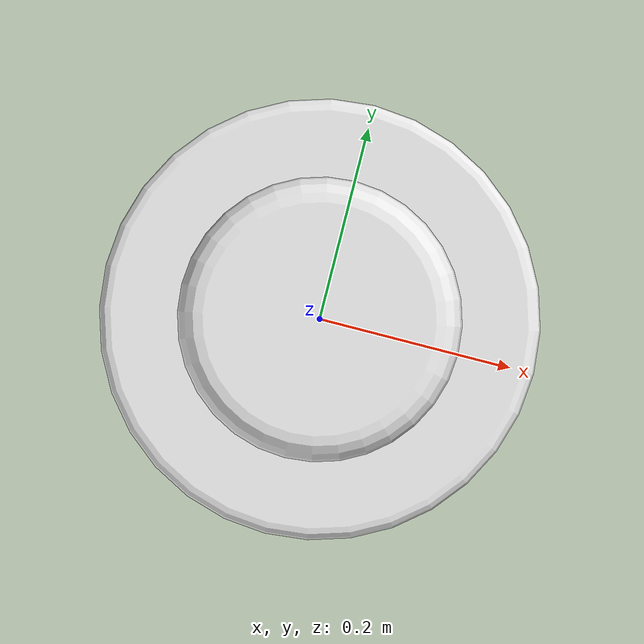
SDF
<?xml version="1.0" ?>
<sdf version="1.6">
  <model name="surmark46104">
    <link name="link">
      <inertial>
        <pose>0 0 -2 0 0 0</pose>
        <mass>17.2365</mass>
        <inertia>
          <ixx>2.5137</ixx>
          <ixy>0</ixy>
          <ixz>0</ixz>
          <iyy>2.5137</iyy>
          <iyz>0</iyz>
          <izz>0.5386</izz>
        </inertia>
      </inertial>
      <collision name="collision_inner">
        <pose>0 0 0.367 0 0 0</pose>
        <geometry>
          <cylinder>
            <radius>0.13</radius>
            <length>1.25</length>
          </cylinder>
        </geometry>
      </collision>
      <collision name="collision_outer">
        <pose>0 0 -0.075 0 0 0</pose>
        <geometry>
          <cylinder>
            <radius>0.23</radius>
            <length>0.16</length>
          </cylinder>
        </geometry>
      </collision>

      <visual name="visual">
        <geometry>
	        <mesh><uri>model://surmark46104/mesh/surmark46104.dae</uri></mesh>
        </geometry>
        <material>
          <script>
            <uri>file://media/materials/scripts/gazebo.material</uri>
            <name>Gazebo/White</name>
          </script>
        </material>
      </visual>
    </link>

    <plugin name="BuoyancyPlugin" filename="libbuoyancy_gazebo_plugin.so">
      <wave_model>ocean_waves</wave_model>
      <fluid_density>1000</fluid_density>
      <fluid_level>0.0</fluid_level>
      <linear_drag>25.0</linear_drag>
      <angular_drag>2.0</angular_drag>
      <buoyancy name="buoyancy_inner_top">
        <link_name>link</link_name>
        <pose>0 0 0.5 0 0 0</pose>
        <geometry>
          <cylinder>
            <radius>0.13</radius>
            <length>0.98</length>
          </cylinder>
        </geometry>
      </buoyancy>
      <buoyancy name="buoyancy_inner_bottom">
        <link_name>link</link_name>
        <pose>0 0 -0.21 0 0 0</pose>
        <geometry>
          <cylinder>
            <radius>0.13</radius>
            <length>0.09</length>
          </cylinder>
        </geometry>
      </buoyancy>
      <buoyancy name="buoyancy_outer">
        <link_name>link</link_name>
        <pose>0 0 -0.08 0 0 0</pose>
        <geometry>
          <cylinder>
            <radius>0.23</radius>
            <length>0.16</length>
          </cylinder>
        </geometry>
      </buoyancy>
    </plugin>
  </model>
</sdf>
